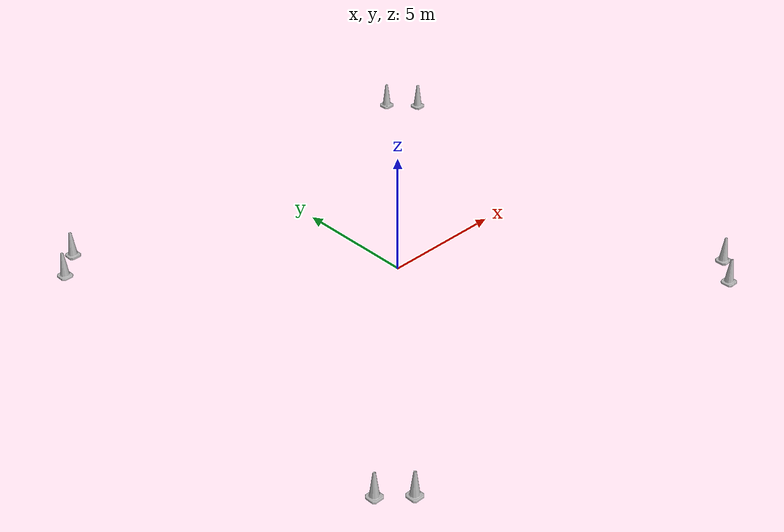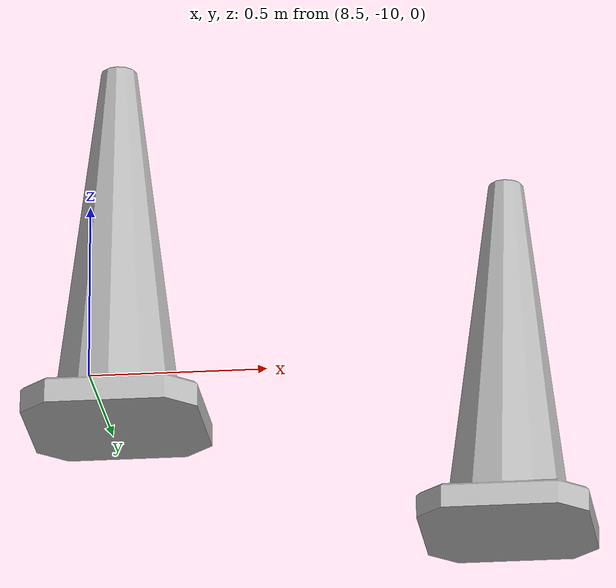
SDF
<?xml version='1.0'?>
<sdf version='1.7'>
  <model name='example_world'>
    <model name='Construction Cone'>
      <link name='link'>
        <collision name='collision'>
          <geometry>
            <mesh>
              <scale>10 10 10</scale>
              <uri>model://construction_cone/meshes/construction_cone.dae</uri>
            </mesh>
          </geometry>
        </collision>
        <visual name='visual'>
          <geometry>
            <mesh>
              <scale>10 10 10</scale>
              <uri>model://construction_cone/meshes/construction_cone.dae</uri>
            </mesh>
          </geometry>
        </visual>
      </link>
      <pose>-8.4631 -9.50755 0 0 -0 0</pose>
    </model>
    <model name='Construction Cone_0'>
      <link name='link'>
        <collision name='collision'>
          <geometry>
            <mesh>
              <scale>10 10 10</scale>
              <uri>model://construction_cone/meshes/construction_cone.dae</uri>
            </mesh>
          </geometry>
        </collision>
        <visual name='visual'>
          <geometry>
            <mesh>
              <scale>10 10 10</scale>
              <uri>model://construction_cone/meshes/construction_cone.dae</uri>
            </mesh>
          </geometry>
        </visual>
      </link>
      <pose>-9.44478 -8.63453 0 0 -0 0</pose>
    </model>
    <model name='Construction Cone_1'>
      <link name='link'>
        <collision name='collision'>
          <geometry>
            <mesh>
              <scale>10 10 10</scale>
              <uri>model://construction_cone/meshes/construction_cone.dae</uri>
            </mesh>
          </geometry>
        </collision>
        <visual name='visual'>
          <geometry>
            <mesh>
              <scale>10 10 10</scale>
              <uri>model://construction_cone/meshes/construction_cone.dae</uri>
            </mesh>
          </geometry>
        </visual>
      </link>
      <pose>8.51634 -9.55228 0 0 -0 0</pose>
    </model>
    <model name='Construction Cone_2'>
      <link name='link'>
        <collision name='collision'>
          <geometry>
            <mesh>
              <scale>10 10 10</scale>
              <uri>model://construction_cone/meshes/construction_cone.dae</uri>
            </mesh>
          </geometry>
        </collision>
        <visual name='visual'>
          <geometry>
            <mesh>
              <scale>10 10 10</scale>
              <uri>model://construction_cone/meshes/construction_cone.dae</uri>
            </mesh>
          </geometry>
        </visual>
      </link>
      <pose>9.53176 -8.53724 0 0 -0 0</pose>
    </model>
    <model name='Construction Cone_3'>
      <link name='link'>
        <collision name='collision'>
          <geometry>
            <mesh>
              <scale>10 10 10</scale>
              <uri>model://construction_cone/meshes/construction_cone.dae</uri>
            </mesh>
          </geometry>
        </collision>
        <visual name='visual'>
          <geometry>
            <mesh>
              <scale>10 10 10</scale>
              <uri>model://construction_cone/meshes/construction_cone.dae</uri>
            </mesh>
          </geometry>
        </visual>
      </link>
      <pose>-8.60051 9.55902 0 0 -0 0</pose>
    </model>
    <model name='Construction Cone_4'>
      <link name='link'>
        <collision name='collision'>
          <geometry>
            <mesh>
              <scale>10 10 10</scale>
              <uri>model://construction_cone/meshes/construction_cone.dae</uri>
            </mesh>
          </geometry>
        </collision>
        <visual name='visual'>
          <geometry>
            <mesh>
              <scale>10 10 10</scale>
              <uri>model://construction_cone/meshes/construction_cone.dae</uri>
            </mesh>
          </geometry>
        </visual>
      </link>
      <pose>-9.62583 8.60802 0 0 -0 0</pose>
    </model>
    <model name='Construction Cone_5'>
      <link name='link'>
        <collision name='collision'>
          <geometry>
            <mesh>
              <scale>10 10 10</scale>
              <uri>model://construction_cone/meshes/construction_cone.dae</uri>
            </mesh>
          </geometry>
        </collision>
        <visual name='visual'>
          <geometry>
            <mesh>
              <scale>10 10 10</scale>
              <uri>model://construction_cone/meshes/construction_cone.dae</uri>
            </mesh>
          </geometry>
        </visual>
      </link>
      <pose>9.52864 8.5191 0 0 -0 0</pose>
    </model>
    <model name='Construction Cone_6'>
      <link name='link'>
        <collision name='collision'>
          <geometry>
            <mesh>
              <scale>10 10 10</scale>
              <uri>model://construction_cone/meshes/construction_cone.dae</uri>
            </mesh>
          </geometry>
        </collision>
        <visual name='visual'>
          <geometry>
            <mesh>
              <scale>10 10 10</scale>
              <uri>model://construction_cone/meshes/construction_cone.dae</uri>
            </mesh>
          </geometry>
        </visual>
      </link>
      <pose>8.55749 9.54546 0 0 -0 0</pose>
    </model>
    <static>0</static>
    <allow_auto_disable>1</allow_auto_disable>
  </model>
</sdf>
